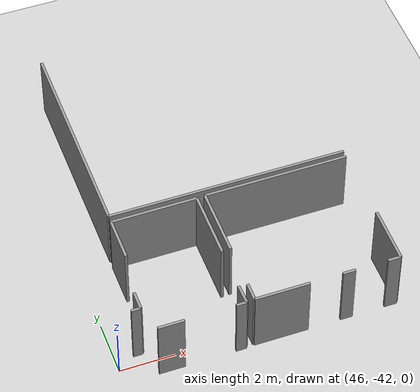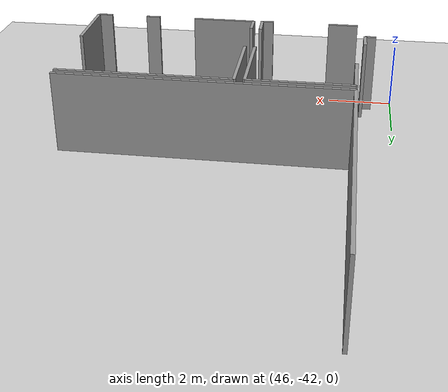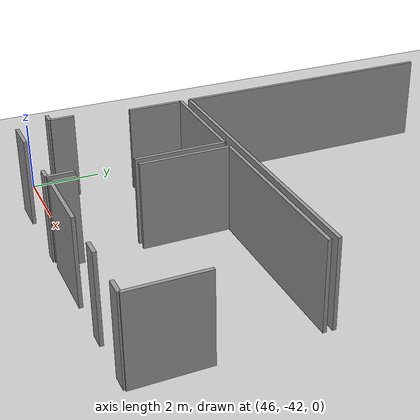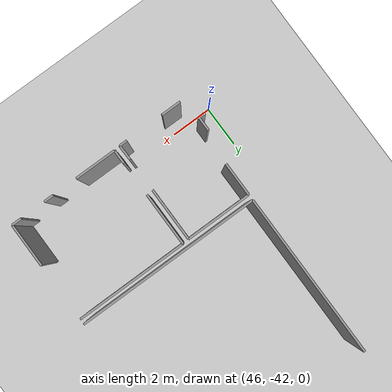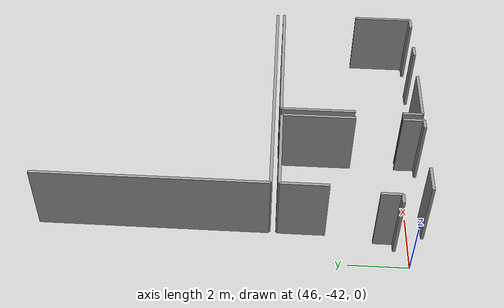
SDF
<sdf version="1.6">
 <world name="default">
  <model name="ground_plane">
   <static>1</static>
   <link name="link">
    <collision name="collision">
     <geometry><plane><normal>0 0 1</normal><size>100 100</size></plane></geometry>
     <surface><friction><ode><mu>100</mu><mu2>50</mu2></ode></friction></surface>
    </collision>
    <visual name="visual">
     <cast_shadows>0</cast_shadows>
     <geometry><plane><normal>0 0 1</normal><size>100 100</size></plane></geometry>
     <material>
      <script><uri>file://media/materials/scripts/gazebo.material</uri><name>Gazebo/Grey</name></script>
     </material>
    </visual>
   </link>
  </model>
  <model name="50025631">
   <static>1</static>
   <link name="Wall_246">
    <collision name="Wall_246_Collision">
     <geometry><box><size>8.68580645571 0.1 2.5</size></box></geometry>
     <pose>4.34290322785 0 1.25 0 0 0</pose>
    </collision>
    <visual name="Wall_246_Visual">
     <pose>4.34290322785 0 1.25 0 0 0</pose>
     <geometry><box><size>8.68580645571 0.1 2.5</size></box></geometry>
     <material>
      <script><uri>file://media/materials/scripts/gazebo.material</uri><name>Gazebo/Grey</name></script>
      <ambient>1 1 1 1</ambient>
     </material>
    </visual>
    <pose>111.81980403 -85.9535666432 0 0 0 3.14159265359</pose>
   </link>
   <link name="Wall_247">
    <collision name="Wall_247_Collision">
     <geometry><box><size>7.77720625123 0.1 2.5</size></box></geometry>
     <pose>3.88860312562 0 1.25 0 0 0</pose>
    </collision>
    <visual name="Wall_247_Visual">
     <pose>3.88860312562 0 1.25 0 0 0</pose>
     <geometry><box><size>7.77720625123 0.1 2.5</size></box></geometry>
     <material>
      <script><uri>file://media/materials/scripts/gazebo.material</uri><name>Gazebo/Grey</name></script>
      <ambient>1 1 1 1</ambient>
     </material>
    </visual>
    <pose>103.133997574 -85.9535666432 0 0 0 1.57079632679</pose>
   </link>
   <link name="Wall_312">
    <collision name="Wall_312_Collision">
     <geometry><box><size>0.687736945381 0.1 2.5</size></box></geometry>
     <pose>0.343868472691 0 1.25 0 0 0</pose>
    </collision>
    <visual name="Wall_312_Visual">
     <pose>0.343868472691 0 1.25 0 0 0</pose>
     <geometry><box><size>0.687736945381 0.1 2.5</size></box></geometry>
     <material>
      <script><uri>file://media/materials/scripts/gazebo.material</uri><name>Gazebo/Grey</name></script>
      <ambient>1 1 1 1</ambient>
     </material>
    </visual>
    <pose>102.885320023 -89.4022848361 0 0 0 -1.57079632679</pose>
   </link>
   <link name="Wall_313">
    <collision name="Wall_313_Collision">
     <geometry><box><size>0.339105751462 0.1 2.5</size></box></geometry>
     <pose>0.169552875731 0 1.25 0 0 0</pose>
    </collision>
    <visual name="Wall_313_Visual">
     <pose>0.169552875731 0 1.25 0 0 0</pose>
     <geometry><box><size>0.339105751462 0.1 2.5</size></box></geometry>
     <material>
      <script><uri>file://media/materials/scripts/gazebo.material</uri><name>Gazebo/Grey</name></script>
      <ambient>1 1 1 1</ambient>
     </material>
    </visual>
    <pose>102.885320023 -90.0900217815 0 0 0 3.14159265359</pose>
   </link>
   <link name="Wall_323">
    <collision name="Wall_323_Collision">
     <geometry><box><size>0.372381297111 0.1 2.5</size></box></geometry>
     <pose>0.186190648556 0 1.25 0 0 0</pose>
    </collision>
    <visual name="Wall_323_Visual">
     <pose>0.186190648556 0 1.25 0 0 0</pose>
     <geometry><box><size>0.372381297111 0.1 2.5</size></box></geometry>
     <material>
      <script><uri>file://media/materials/scripts/gazebo.material</uri><name>Gazebo/Grey</name></script>
      <ambient>1 1 1 1</ambient>
     </material>
    </visual>
    <pose>106.260120783 -91.0651730773 0 0 0 3.14159265359</pose>
   </link>
   <link name="Wall_324">
    <collision name="Wall_324_Collision">
     <geometry><box><size>0.941113714732 0.1 2.5</size></box></geometry>
     <pose>0.470556857366 0 1.25 0 0 0</pose>
    </collision>
    <visual name="Wall_324_Visual">
     <pose>0.470556857366 0 1.25 0 0 0</pose>
     <geometry><box><size>0.941113714732 0.1 2.5</size></box></geometry>
     <material>
      <script><uri>file://media/materials/scripts/gazebo.material</uri><name>Gazebo/Grey</name></script>
      <ambient>1 1 1 1</ambient>
     </material>
    </visual>
    <pose>104.075111289 -91.0651730773 0 0 0 3.14159265359</pose>
   </link>
   <link name="Wall_326">
    <collision name="Wall_326_Collision">
     <geometry><box><size>1.59989331504 0.1 2.5</size></box></geometry>
     <pose>0.799946657522 0 1.25 0 0 0</pose>
    </collision>
    <visual name="Wall_326_Visual">
     <pose>0.799946657522 0 1.25 0 0 0</pose>
     <geometry><box><size>1.59989331504 0.1 2.5</size></box></geometry>
     <material>
      <script><uri>file://media/materials/scripts/gazebo.material</uri><name>Gazebo/Grey</name></script>
      <ambient>1 1 1 1</ambient>
     </material>
    </visual>
    <pose>103.133997574 -87.8288087482 0 0 0 1.57079632679</pose>
   </link>
   <link name="Wall_327">
    <collision name="Wall_327_Collision">
     <geometry><box><size>3.11164453589 0.1 2.5</size></box></geometry>
     <pose>1.55582226794 0 1.25 0 0 0</pose>
    </collision>
    <visual name="Wall_327_Visual">
     <pose>1.55582226794 0 1.25 0 0 0</pose>
     <geometry><box><size>3.11164453589 0.1 2.5</size></box></geometry>
     <material>
      <script><uri>file://media/materials/scripts/gazebo.material</uri><name>Gazebo/Grey</name></script>
      <ambient>1 1 1 1</ambient>
     </material>
    </visual>
    <pose>103.133997574 -86.2289154331 0 0 0 0.0</pose>
   </link>
   <link name="Wall_328">
    <collision name="Wall_328_Collision">
     <geometry><box><size>2.53440272301 0.1 2.5</size></box></geometry>
     <pose>1.2672013615 0 1.25 0 0 0</pose>
    </collision>
    <visual name="Wall_328_Visual">
     <pose>1.2672013615 0 1.25 0 0 0</pose>
     <geometry><box><size>2.53440272301 0.1 2.5</size></box></geometry>
     <material>
      <script><uri>file://media/materials/scripts/gazebo.material</uri><name>Gazebo/Grey</name></script>
      <ambient>1 1 1 1</ambient>
     </material>
    </visual>
    <pose>106.24564211 -86.2289154331 0 0 0 -1.57079632679</pose>
   </link>
   <link name="Wall_329">
    <collision name="Wall_329_Collision">
     <geometry><box><size>0.726237068849 0.1 2.5</size></box></geometry>
     <pose>0.363118534425 0 1.25 0 0 0</pose>
    </collision>
    <visual name="Wall_329_Visual">
     <pose>0.363118534425 0 1.25 0 0 0</pose>
     <geometry><box><size>0.726237068849 0.1 2.5</size></box></geometry>
     <material>
      <script><uri>file://media/materials/scripts/gazebo.material</uri><name>Gazebo/Grey</name></script>
      <ambient>1 1 1 1</ambient>
     </material>
    </visual>
    <pose>106.24564211 -90.3390803503 0 0 0 -1.55085844086</pose>
   </link>
   <link name="Wall_330">
    <collision name="Wall_330_Collision">
     <geometry><box><size>0.466111650886 0.1 2.5</size></box></geometry>
     <pose>0.233055825443 0 1.25 0 0 0</pose>
    </collision>
    <visual name="Wall_330_Visual">
     <pose>0.233055825443 0 1.25 0 0 0</pose>
     <geometry><box><size>0.466111650886 0.1 2.5</size></box></geometry>
     <material>
      <script><uri>file://media/materials/scripts/gazebo.material</uri><name>Gazebo/Grey</name></script>
      <ambient>1 1 1 1</ambient>
     </material>
    </visual>
    <pose>111.808373499 -91.0360887263 0 0 0 3.14159265359</pose>
   </link>
   <link name="Wall_331">
    <collision name="Wall_331_Collision">
     <geometry><box><size>0.454681119938 0.1 2.5</size></box></geometry>
     <pose>0.227340559969 0 1.25 0 0 0</pose>
    </collision>
    <visual name="Wall_331_Visual">
     <pose>0.227340559969 0 1.25 0 0 0</pose>
     <geometry><box><size>0.454681119938 0.1 2.5</size></box></geometry>
     <material>
      <script><uri>file://media/materials/scripts/gazebo.material</uri><name>Gazebo/Grey</name></script>
      <ambient>1 1 1 1</ambient>
     </material>
    </visual>
    <pose>110.162377042 -91.0360887263 0 0 0 3.14159265359</pose>
   </link>
   <link name="Wall_332">
    <collision name="Wall_332_Collision">
     <geometry><box><size>1.97925993662 0.1 2.5</size></box></geometry>
     <pose>0.989629968312 0 1.25 0 0 0</pose>
    </collision>
    <visual name="Wall_332_Visual">
     <pose>0.989629968312 0 1.25 0 0 0</pose>
     <geometry><box><size>1.97925993662 0.1 2.5</size></box></geometry>
     <material>
      <script><uri>file://media/materials/scripts/gazebo.material</uri><name>Gazebo/Grey</name></script>
      <ambient>1 1 1 1</ambient>
     </material>
    </visual>
    <pose>108.528700158 -91.0360887263 0 0 0 3.14159265359</pose>
   </link>
   <link name="Wall_333">
    <collision name="Wall_333_Collision">
     <geometry><box><size>0.671988213853 0.1 2.5</size></box></geometry>
     <pose>0.335994106926 0 1.25 0 0 0</pose>
    </collision>
    <visual name="Wall_333_Visual">
     <pose>0.335994106926 0 1.25 0 0 0</pose>
     <geometry><box><size>0.671988213853 0.1 2.5</size></box></geometry>
     <material>
      <script><uri>file://media/materials/scripts/gazebo.material</uri><name>Gazebo/Grey</name></script>
      <ambient>1 1 1 1</ambient>
     </material>
    </visual>
    <pose>106.549440221 -91.0360887263 0 0 0 1.57079632679</pose>
   </link>
   <link name="Wall_334">
    <collision name="Wall_334_Collision">
     <geometry><box><size>2.54011798848 0.1 2.5</size></box></geometry>
     <pose>1.27005899424 0 1.25 0 0 0</pose>
    </collision>
    <visual name="Wall_334_Visual">
     <pose>1.27005899424 0 1.25 0 0 0</pose>
     <geometry><box><size>2.54011798848 0.1 2.5</size></box></geometry>
     <material>
      <script><uri>file://media/materials/scripts/gazebo.material</uri><name>Gazebo/Grey</name></script>
      <ambient>1 1 1 1</ambient>
     </material>
    </visual>
    <pose>106.549440221 -88.7476964305 0 0 0 1.57079632679</pose>
   </link>
   <link name="Wall_335">
    <collision name="Wall_335_Collision">
     <geometry><box><size>5.26020333644 0.1 2.5</size></box></geometry>
     <pose>2.63010166822 0 1.25 0 0 0</pose>
    </collision>
    <visual name="Wall_335_Visual">
     <pose>2.63010166822 0 1.25 0 0 0</pose>
     <geometry><box><size>5.26020333644 0.1 2.5</size></box></geometry>
     <material>
      <script><uri>file://media/materials/scripts/gazebo.material</uri><name>Gazebo/Grey</name></script>
      <ambient>1 1 1 1</ambient>
     </material>
    </visual>
    <pose>106.549440221 -86.207578442 0 0 0 0.0</pose>
   </link>
   <link name="Wall_336">
    <collision name="Wall_336_Collision">
     <geometry><box><size>2.08213510251 0.1 2.5</size></box></geometry>
     <pose>1.04106755126 0 1.25 0 0 0</pose>
    </collision>
    <visual name="Wall_336_Visual">
     <pose>1.04106755126 0 1.25 0 0 0</pose>
     <geometry><box><size>2.08213510251 0.1 2.5</size></box></geometry>
     <material>
      <script><uri>file://media/materials/scripts/gazebo.material</uri><name>Gazebo/Grey</name></script>
      <ambient>1 1 1 1</ambient>
     </material>
    </visual>
    <pose>111.809643558 -88.9539540112 0 0 0 -1.57140630598</pose>
   </link>
   <pose>-55.9 48.5496043766 0 0 0 0</pose>
  </model>
 </world>
</sdf>
